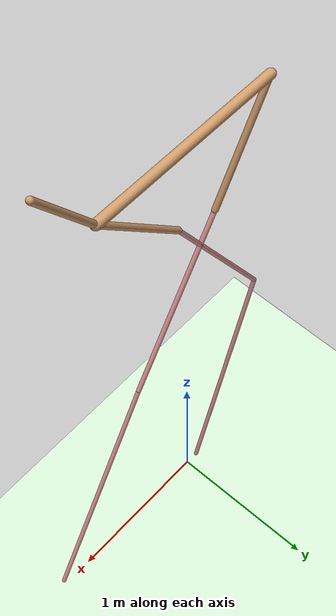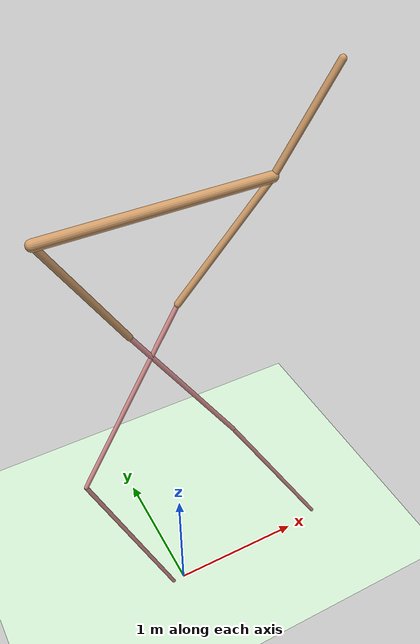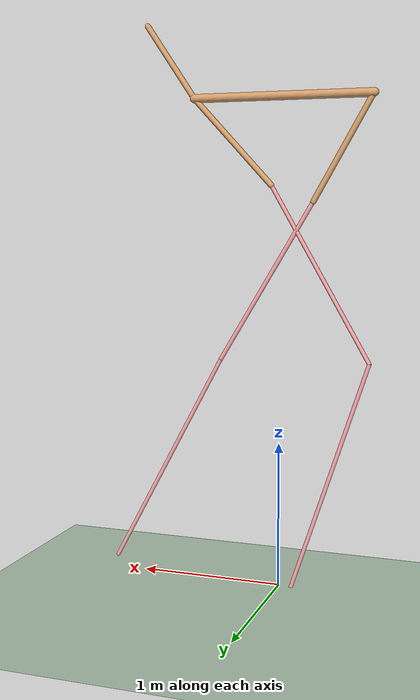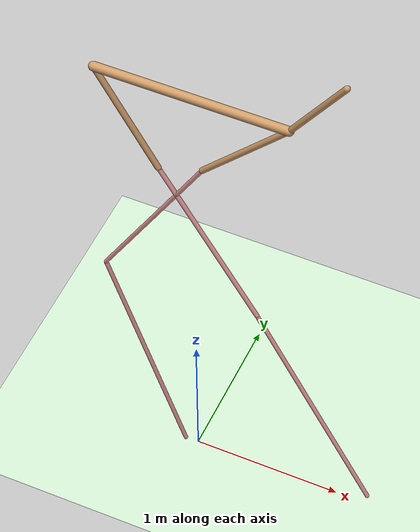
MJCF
<mujoco model="cheetah">
    <compiler angle="radian" coordinate="local" inertiafromgeom="true" settotalmass="14"/>
    <default>
      <joint armature=".1" damping=".01" limited="true" solimplimit="0 .8 .03" solreflimit=".02 1" stiffness="8"/>
      <geom conaffinity="0" condim="3" contype="1" friction=".4 .1 .1" rgba="0.8 0.6 .4 1" solimp="0.0 0.8 0.01" solref="0.02 1"/>
      <motor ctrllimited="true" ctrlrange="-1 1"/>
    </default>
    <size nstack="300000" nuser_geom="1"/>
    <option gravity="0 0 -9.81" timestep="0.01"/>
    <asset>
      <texture builtin="gradient" height="100" rgb1="1 1 1" rgb2="0 0 0" type="skybox" width="100"/>
      <texture builtin="flat" height="1278" mark="cross" markrgb="1 1 1" name="texgeom" random="0.01" rgb1="0.8 0.6 0.4" rgb2="0.8 0.6 0.4" type="cube" width="127"/>
      <texture builtin="checker" height="100" name="texplane" rgb1="0 0 0" rgb2="0.8 0.8 0.8" type="2d" width="100"/>
      <material name="MatPlane" reflectance="0.5" shininess="1" specular="1" texrepeat="60 60" texture="texplane"/>
      <material name="geom" texture="texgeom" texuniform="true"/>
    </asset>
    <worldbody>
    <light cutoff="100" diffuse="1 1 1" dir="-0 0 -1.3" directional="true" exponent="1" pos="0 0 1.3" specular=".1 .1 .1"/>
    <geom conaffinity="1" condim="3" material="MatPlane" name="floor" pos="0 0 0" rgba="0.8 0.9 0.8 1" size="40 40 40" type="plane"/>
    <body name="torso" pos="0 0 3.35">
      <joint armature="0" axis="1 0 0" damping="0" limited="false" name="ignorex" pos="0 0 0" stiffness="0" type="slide"/>
      <joint armature="0" axis="0 0 1" damping="0" limited="false" name="ignorez" pos="0 0 0" stiffness="0" type="slide"/>
      <joint armature="0" axis="0 1 0" damping="0" limited="false" name="ignorey" pos="0 0 0" stiffness="0" type="hinge"/>
      <geom fromto="-0.63 0 0 0.61 0 0" name="torso" size="0.03" type="capsule"/>
      <geom fromto="0.61 0 0 0.95 0 0.5" name="head"  size="0.02" type="capsule"/>

      <body name="bthigh" pos="-0.63 0 0">
        <joint axis="0 1 0" damping="6" name="bthigh" pos="0 0 0" range="-.52 1.05" stiffness="240" type="hinge"/>
        <geom fromto = "0 0 0 0.4 0 -0.7" name="bthigh" size="0.02" type="capsule"/>
        <body name="bshin" pos="0.4 0 -0.7">
          <joint axis="0 1 0" damping="4.5" name="bshin" pos="0 0 0" range="-.785 .785" stiffness="180" type="hinge"/>
          <geom fromto = "0 0 0 0.65 0 -1.08" name="bshin" rgba="0.9 0.6 0.6 1" size="0.015" type="capsule"/>
          <body name="bfoot" pos="0.65 0 -1.08">
            <joint axis="0 1 0" damping="3" name="bfoot" pos="0 0 0" range="-.4 .785" stiffness="120" type="hinge"/>
            <geom fromto = "0 0 0 0.8 0 -1.48" name="bfoot" rgba="0.9 0.6 0.6 1" size="0.014" type="capsule"/>
          </body>
        </body>
      </body>

      <body name="fthigh" pos="0.61 0 0">
        <joint axis="0 1 0" damping="4.5" name="fthigh" pos="0 0 0" range="-1.5 0.8" stiffness="180" type="hinge"/>
        <geom fromto = "0 0 0 -0.55 0 -0.59" name="fthigh" size="0.02" type="capsule"/>
        <body name="fshin" pos = "-0.55 0 -0.59">
          <joint axis="0 1 0" damping="3" name="fshin" pos="0 0 0" range="-1.2 1.1" stiffness="120" type="hinge"/>
          <geom fromto = "0 0 0 -0.68 0 -1.18" rgba="0.9 0.6 0.6 1" size="0.014" type="capsule"/>
          <body name="ffoot" pos="-0.68 0 -1.18">
            <joint axis="0 1 0" damping="1.5" name="ffoot" pos="0 0 0" range="-3.1 -0.3" stiffness="60" type="hinge"/>
            <geom fromto = "0 0 0 0.53 0 -1.58" name="ffoot" rgba="0.9 0.6 0.6 1" size="0.014" type="capsule"/>
          </body>
        </body>
      </body>
    </body>

    </worldbody>
    <actuator>
    <motor gear="120" joint="bthigh" name="bthigh"/>
    <motor gear="90" joint="bshin" name="bshin"/>
    <motor gear="60" joint="bfoot" name="bfoot"/>
    <motor gear="120" joint="fthigh" name="fthigh"/>
    <motor gear="60" joint="fshin" name="fshin"/>
    <motor gear="30" joint="ffoot" name="ffoot"/>
    </actuator>
    </mujoco>
